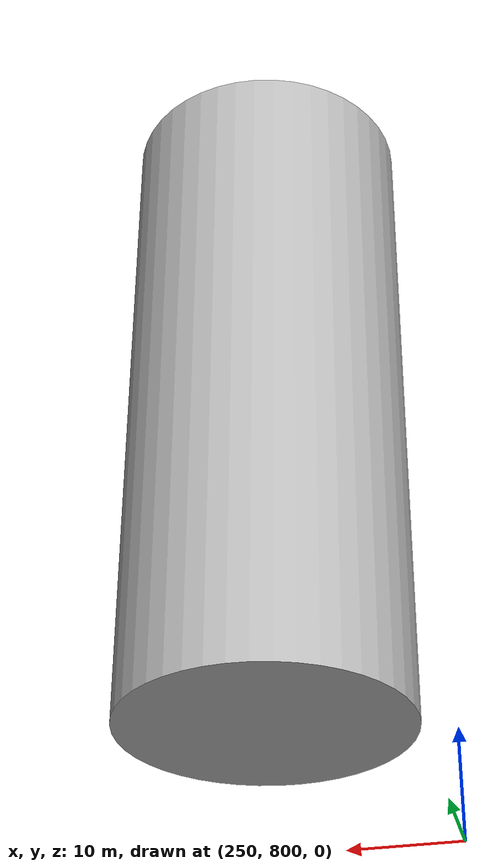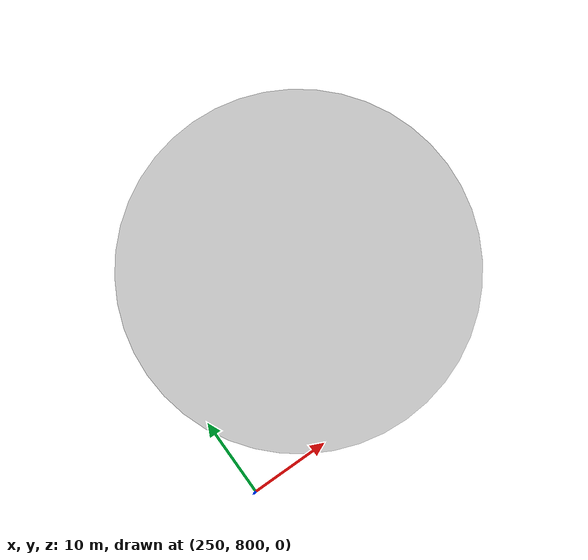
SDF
<?xml version='1.0'?>
<sdf version="1.4">
  <model name="vtulka2">
    <pose>0 0 0.5 0 0 0</pose>
    <static>true</static>
    <link name="link">
      <collision name="collision">
        <geometry>
          <mesh>
            <uri>meshes/vtulka2.STL</uri>
          <scale>1 1 1</scale>
          </mesh>
        </geometry>
      </collision>
      <visual name="visual">
        <geometry>
          <mesh>
            <uri>meshes/vtulka2.STL</uri>
          <scale>1 1 1</scale>
          </mesh>
        </geometry>
      </visual>
    </link>
  </model>
</sdf>
